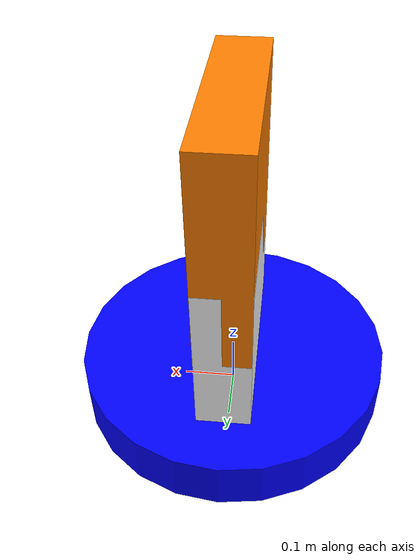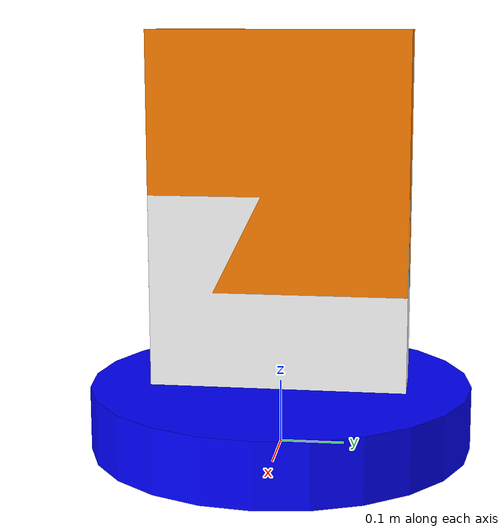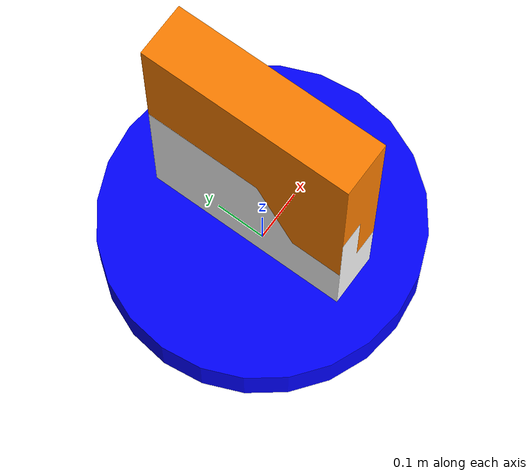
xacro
<?xml version="1.0"?>
<robot name="servo" xmlns:xacro="http://www.ros.org/wiki/xacro">

    <material name="blue">
        <color rgba="0 0 1 1"/>
    </material>
    <material name="white">
        <color rgba="1 1 1 1"/>
    </material>
    <material name="orange">
        <color rgba="1 0.5 0 1"/>
    </material>
    <material name="red">
        <color rgba="1 0 0 1"/>
    </material>
    <material name="black">
        <color rgba="0 0 0 1"/>
    </material>

    <link name="base_link">
    </link>

    <joint name="chassis_joint" type="fixed">
        <parent link="base_link"/>
        <child link="chassis_link"/>
        <origin xyz="0 0 0.05" rpy="0 0 0"/>
    </joint>

    <link name="chassis_link">
        <visual>
            <geometry>
                <cylinder radius="0.3" length="0.1"/>
            </geometry>
            <material name="blue"/>
        </visual>
        <collision>
            <geometry>
                <cylinder radius="0.3" length="0.1"/>
            </geometry>
        </collision>
    </link>

    <joint name="pan_joint" type="revolute">
        <parent link="chassis_link"/>
        <child link="pan_link"/>
        <origin xyz="0 0 0.2" rpy="0 0 0"/>
        <axis xyz="0 0 1"/>
        <limit effort="1" velocity="3.14" lower="0" upper="3.14"/>
    </joint>

    <link name="pan_link">
        <visual>
            <geometry>
                <box size="0.1 0.4 0.3"/>
            </geometry>
            <material name="white"/>
        </visual>
        <collision>
            <geometry>
                <box size="0.1 0.4 0.3"/>
            </geometry>
        </collision >
    </link>

    <joint name="tilt_joint" type="revolute">
        <parent link="pan_link"/>
        <child link="tilt_link"/>
        <origin xyz="0 0 0.2" rpy="0 -1.57 3.14"/>
        <axis xyz="0 1 0"/>
        <limit effort="1" velocity="3.14" lower="0" upper="3.14"/>
    </joint>

    <link name="tilt_link">
        <visual>
            <geometry>
                <box size="0.4 0.4 0.1"/>
            </geometry>
            <material name="orange"/>
        </visual>
        <collision>
            <geometry>
                <box size="0.4 0.4 0.1"/>
            </geometry>
        </collision >
    </link>
</robot>
